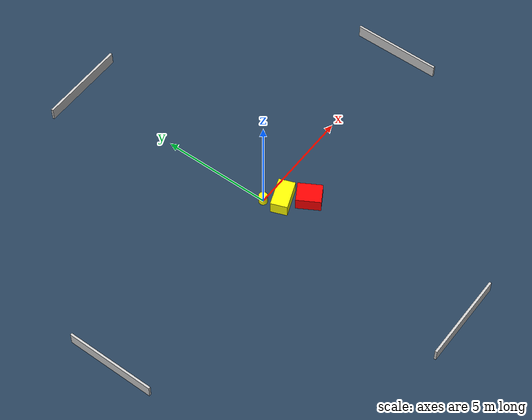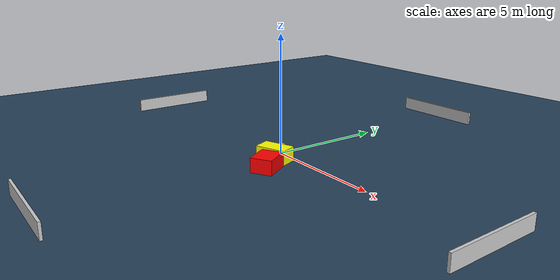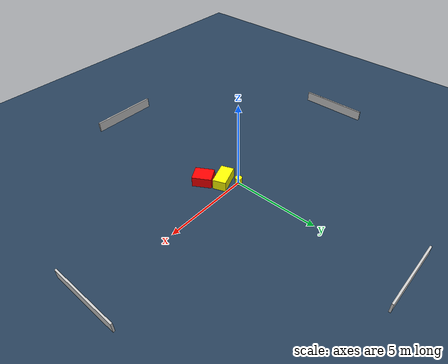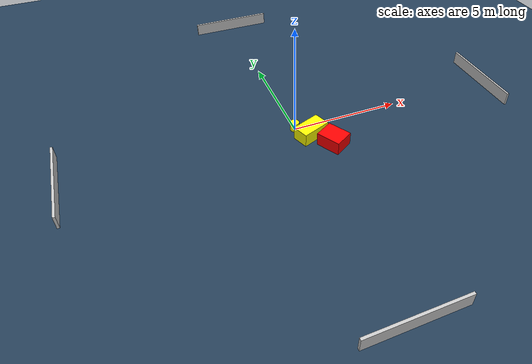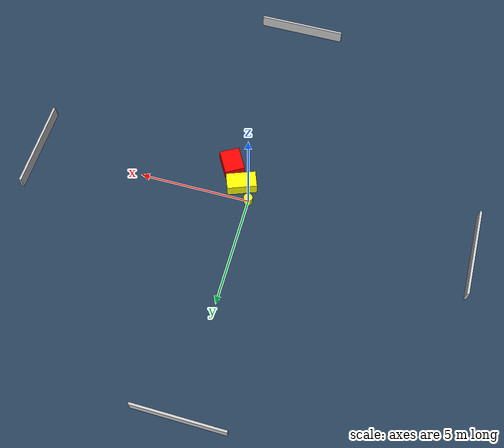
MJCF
<?xml version="1.0" ?>
<mujoco model="generated_environment">
  <option timestep="0.01" integrator="RK4" cone="elliptic"/>
  <default>
    <geom density="1"/>
  </default>
  <asset>
    <texture builtin="gradient" height="3072" name="skybox" rgb1="0.3 0.5 0.7" rgb2="0 0 0" type="skybox" width="512"/>
    <texture builtin="checker" height="300" name="groundplane" rgb1="0.2 0.3 0.4" rgb2="0.1 0.2 0.3" type="2d" width="300"/>
    <material name="groundplane" reflectance="0.2" texrepeat="5 5" texture="groundplane"/>
  </asset>
  <worldbody>
    <light dir="0 0 -1" directional="true" pos="0 0 1.5"/>
    <geom condim="3" friction="0.5 0.005 0.001" material="groundplane" name="floor" pos="0 0 0" size="0 0 0.05" type="plane"/>
    <body name="walls">
      <geom name="wall_1" condim="4" pos="-10.0 0.0 0.3" rgba="0.800000011920929 0.800000011920929 0.800000011920929 1.0" size="0.05 2.0 0.3" type="box"/>
      <geom name="wall_2" condim="4" pos="10.0 0.0 0.3" rgba="0.800000011920929 0.800000011920929 0.800000011920929 1.0" size="0.05 2.0 0.3" type="box"/>
      <geom name="wall_3" condim="4" pos="0.0 -10.0 0.3" rgba="0.800000011920929 0.800000011920929 0.800000011920929 1.0" size="2.0 0.05 0.3" type="box"/>
      <geom name="wall_4" condim="4" pos="0.0 10.0 0.3" rgba="0.800000011920929 0.800000011920929 0.800000011920929 1.0" size="2.0 0.05 0.3" type="box"/>
    </body>
    <body name="robot">
      <joint name="joint_x" type="slide" pos="0 0 0" axis="1 0 0"/>
      <joint name="joint_y" type="slide" pos="0 0 0" axis="0 1 0"/>
      <geom name="robot" type="cylinder" pos="0.0 0.0 0.2" size="0.2 0.2 0.0" mass="5.0" friction="1.0 0.005 0.0001" condim="4" rgba="1.0 1.0 0.0 1.0"/>
    </body>
    <body name="obstacle_1_movable">
      <geom name="obstacle_1_movable" condim="4" pos="0.5013376588209387 -0.6658959377477324 0.3" euler="0 0 290.85646474279764" friction="0.0 0.005 0.001" rgba="1.0 1.0 0.0 1.0" size="0.37481729246108336 0.6639662484894537 0.3" type="box" mass="0.1"/>
      <joint type="free"/>
    </body>
    <body name="obstacle_2_static">
      <geom name="obstacle_2_static" condim="4" pos="1.1861474389591928 -1.5395893842831083 0.3" euler="0 0 300.2771338089723" friction="0.0 0.005 0.001" rgba="1.0 0.0 0.0 1.0" size="0.548007488105231 0.44970995244020523 0.3" type="box"/>
    </body>
  </worldbody>
  <actuator>
    <motor name="actuator_x" joint="joint_x" gear="1" ctrlrange="-1 1"/>
    <motor name="actuator_y" joint="joint_y" gear="1" ctrlrange="-1 1"/>
  </actuator>
</mujoco>
